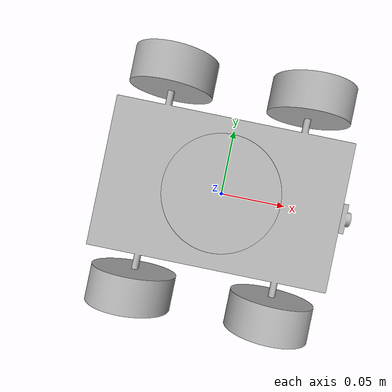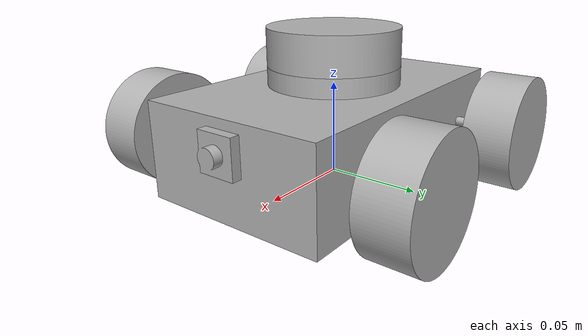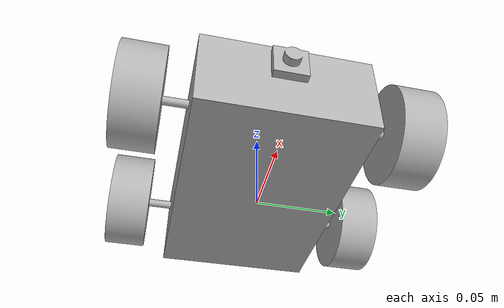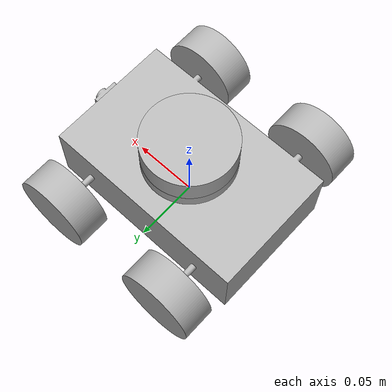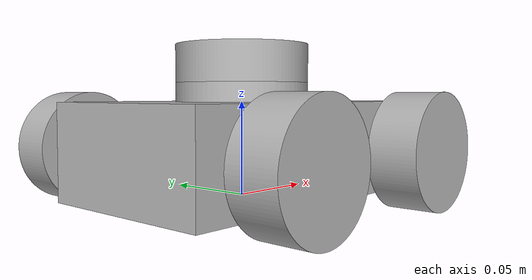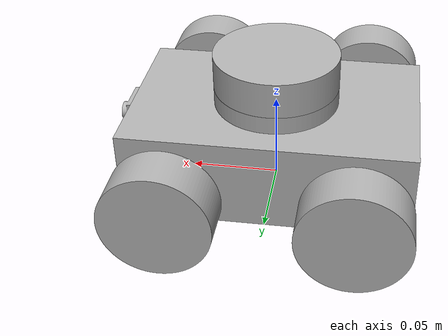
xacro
<?xml version="1.0" ?>
<robot name="mircobot" xmlns:xacro="http://www.ros.org/wiki/xacro">

    <xacro:arg name="use_ros2_control" default="true"/>

    <xacro:include filename="$(find mircobot_description)/urdf/materials.xacro" />
    <xacro:include filename="$(find mircobot_description)/urdf/mircobot.xacro" />

    <xacro:include filename="$(find mircobot_description)/urdf/mircobot_gazebo.xacro"/>
    <xacro:if value="$(arg use_ros2_control)">
        <xacro:include filename="$(find mircobot_description)/urdf/ros2_control.xacro"/>
    </xacro:if>
    <xacro:unless value="$(arg use_ros2_control)">
        <xacro:include filename="$(find mircobot_description)/urdf/gazebo_control.xacro"/>
    </xacro:unless>

</robot>

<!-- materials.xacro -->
<robot name="mircobot" xmlns:xacro="http://www.ros.org/wiki/xacro" >

  <material name="silver">
    <color rgba="0.700 0.700 0.700 1.000"/>
  </material>

</robot>

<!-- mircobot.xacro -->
<robot name="mircobot" xmlns:xacro="http://www.ros.org/wiki/xacro">

<link name="base_link">
  <inertial>
    <origin xyz="2.166333700984817e-17 1.0831668504924085e-17 0.02637499906536667" rpy="0 0 0"/>
    <mass value="6.591351466924831"/>
    <inertia ixx="0.006927" iyy="0.015083" izz="0.01887" ixy="-0.0" iyz="0.0" ixz="0.0"/>
  </inertial>
  <visual>
    <origin xyz="0 0 0" rpy="0 0 0"/>
    <geometry>
      <mesh filename="file://$(find mircobot_description)/meshes/base_link.stl" scale="0.001 0.001 0.001"/>
    </geometry>
    <material name="silver"/>
  </visual>
  <collision>
    <origin xyz="0 0 0" rpy="0 0 0"/>
    <geometry>
      <mesh filename="file://$(find mircobot_description)/meshes/base_link.stl" scale="0.001 0.001 0.001"/>
    </geometry>
  </collision>
</link>

<joint name="wheel_front_left_joint" type="fixed">
  <origin xyz="0.05 0.065 0.025" rpy="-1.5708 0 0"/>
  <parent link="base_link"/>
  <child link="wheel_front_left_1"/>
  <axis xyz="0.0 0.0 1.0"/>
</joint>

<link name="wheel_front_left_1">
  <inertial>
    <origin xyz="-1.3877787807814457e-17 0.012499999999999997 0.0" rpy="0 0 0"/>
    <mass value="0.5548838024402973"/>
    <inertia ixx="0.000154" iyy="0.00025" izz="0.000154" ixy="-0.0" iyz="0.0" ixz="0.0"/>
  </inertial>
  <visual>
    <origin xyz="-0.05 -0.025 0.090" rpy="-1.5708 0 0"/>
    <geometry>
      <mesh filename="file://$(find mircobot_description)/meshes/wheel_front_left_1.stl" scale="0.001 0.001 0.001"/>
    </geometry>
    <material name="silver"/>
  </visual>
  <collision>
    <origin xyz="-0.05 -0.025 0.090" rpy="-1.5708 0 0"/>
    <geometry>
      <mesh filename="file://$(find mircobot_description)/meshes/wheel_front_left_1.stl" scale="0.001 0.001 0.001"/>
    </geometry>
  </collision>
</link>

<joint name="wheel_back_left_joint" type="continuous">
  <origin xyz="-0.05 0.065 0.025" rpy="-1.5708 0 0"/>
  <parent link="base_link"/>
  <child link="wheel_back_left_1"/>
  <axis xyz="0.0 0.0 1.0"/>
</joint>

<link name="wheel_back_left_1">
  <inertial>
    <origin xyz="1.3877787807814457e-17 0.012499999999999997 0.0" rpy="0 0 0"/>
    <mass value="0.554883802440297"/>
    <inertia ixx="0.000154" iyy="0.00025" izz="0.000154" ixy="0.0" iyz="-0.0" ixz="-0.0"/>
  </inertial>
  <visual>
    <origin xyz="0.05 -0.025 0.090" rpy="-1.5708 0 0"/>
    <geometry>
      <mesh filename="file://$(find mircobot_description)/meshes/wheel_back_left_1.stl" scale="0.001 0.001 0.001"/>
    </geometry>
    <material name="silver"/>
  </visual>
  <collision>
    <origin xyz="0.05 -0.025 0.090" rpy="-1.5708 0 0"/>
    <geometry>
      <mesh filename="file://$(find mircobot_description)/meshes/wheel_back_left_1.stl" scale="0.001 0.001 0.001"/>
    </geometry>
  </collision>
</link>

<joint name="wheel_front_right_joint" type="fixed">
  <origin xyz="0.05 -0.065 0.025" rpy="-1.5708 0 0"/>
  <parent link="base_link"/>
  <child link="wheel_front_right_1"/>
  <axis xyz="0.0 0.0 1.0"/>
</joint>

<link name="wheel_front_right_1">
  <inertial>
    <origin xyz="-1.3877787807814457e-17 -0.012499999999999997 0.0" rpy="0 0 0"/>
    <mass value="0.5548838024402969"/>
    <inertia ixx="0.000154" iyy="0.00025" izz="0.000154" ixy="0.0" iyz="0.0" ixz="-0.0"/>
  </inertial>
  <visual>
    <origin xyz="-0.05 0.025 0.065" rpy="1.5708 0 0"/>
    <geometry>
      <mesh filename="file://$(find mircobot_description)/meshes/wheel_front_right_1.stl" scale="0.001 0.001 0.001"/>
    </geometry>
    <material name="silver"/>
  </visual>
  <collision>
    <origin xyz="-0.05 0.025 0.065" rpy="1.5708 0 0"/>
    <geometry>
      <mesh filename="file://$(find mircobot_description)/meshes/wheel_front_right_1.stl" scale="0.001 0.001 0.001"/>
    </geometry>
  </collision>
</link>

<joint name="wheel_back_right_joint" type="continuous">
  <origin xyz="-0.05 -0.065 0.025" rpy="-1.5708 0 0"/>
  <parent link="base_link"/>
  <child link="wheel_back_right_1"/>
  <axis xyz="0.0 0.0 1.0"/>
</joint>

<link name="wheel_back_right_1">
  <inertial>
    <origin xyz="1.3877787807814457e-17 -0.012499999999999997 0.0" rpy="0 0 0"/>
    <mass value="0.554883802440297"/>
    <inertia ixx="0.000154" iyy="0.00025" izz="0.000154" ixy="-0.0" iyz="0.0" ixz="-0.0"/>
  </inertial>
  <visual>
    <origin xyz="0.05 0.025 0.065" rpy="1.5708 0 0"/>
    <geometry>
      <mesh filename="file://$(find mircobot_description)/meshes/wheel_back_right_1.stl" scale="0.001 0.001 0.001"/>
    </geometry>
    <material name="silver"/>
  </visual>
  <collision>
    <origin xyz="0.05 0.025 0.065" rpy="1.5708 0 0"/>
    <geometry>
      <mesh filename="file://$(find mircobot_description)/meshes/wheel_back_right_1.stl" scale="0.001 0.001 0.001"/>
    </geometry>
  </collision>
</link>

<joint name="lidar_joint" type="fixed">
  <origin xyz="0.0 0.0 0.06" rpy="0 0 0"/>
  <parent link="base_link"/>
  <child link="lidar_1"/>
</joint>

<link name="lidar_1">
  <inertial>
    <origin xyz="-1.7763568394002505e-17 -7.385233546074017e-18 0.010000000000000009" rpy="0 0 0"/>
    <mass value="0.6042068071016569"/>
    <inertia ixx="0.000205" iyy="0.000205" izz="0.00037" ixy="0.0" iyz="-0.0" ixz="-0.0"/>
  </inertial>
  <visual>
    <origin xyz="-0.0 -0.0 -0.06" rpy="0 0 0"/>
    <geometry>
      <mesh filename="file://$(find mircobot_description)/meshes/lidar_1.stl" scale="0.001 0.001 0.001"/>
    </geometry>
    <material name="silver"/>
  </visual>
  <collision>
    <origin xyz="-0.0 -0.0 -0.06" rpy="0 0 0"/>
    <geometry>
      <mesh filename="file://$(find mircobot_description)/meshes/lidar_1.stl" scale="0.001 0.001 0.001"/>
    </geometry>
  </collision>
</link>

<joint name="camera_joint" type="fixed">
  <origin xyz="0.08 0.0 0.025" rpy="0 0 0"/>
  <parent link="base_link"/>
  <child link="camera_1"/>
</joint>

<link name="camera_1">
  <inertial>
    <origin xyz="0.003320619451694526 -1.050959940980693e-29 0.009999999999914189" rpy="0 0 0"/>
    <mass value="0.018782687791334844"/>
    <inertia ixx="1e-06" iyy="1e-06" izz="1e-06" ixy="-0.0" iyz="0.0" ixz="-0.0"/>
  </inertial>
  <visual>
    <origin xyz="-0.08 -0.0 -0.025" rpy="0 0 0"/>
    <geometry>
      <mesh filename="file://$(find mircobot_description)/meshes/camera_1.stl" scale="0.001 0.001 0.001"/>
    </geometry>
    <material name="silver"/>
  </visual>
  <collision>
    <origin xyz="-0.08 -0.0 -0.025" rpy="0 0 0"/>
    <geometry>
      <mesh filename="file://$(find mircobot_description)/meshes/camera_1.stl" scale="0.001 0.001 0.001"/>
    </geometry>
  </collision>
</link>

<joint name="camera_optical_joint" type="fixed">
  <parent link="camera_1"/>
  <child link="camera_optical"/>
  <origin xyz="0.01 0 0.01" rpy="0 0 0"/>
</joint>

<link name="camera_optical"/>

</robot>
